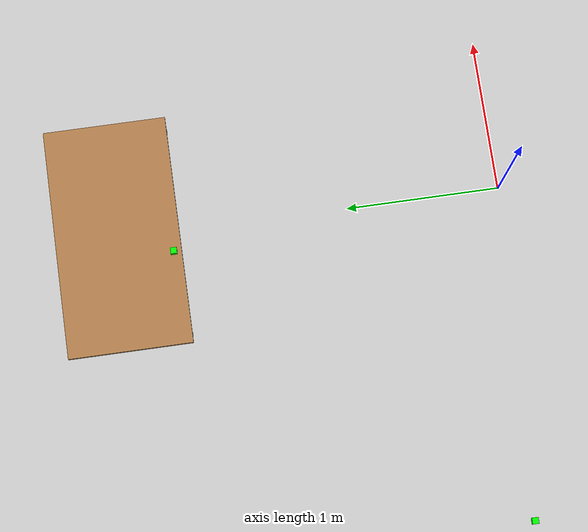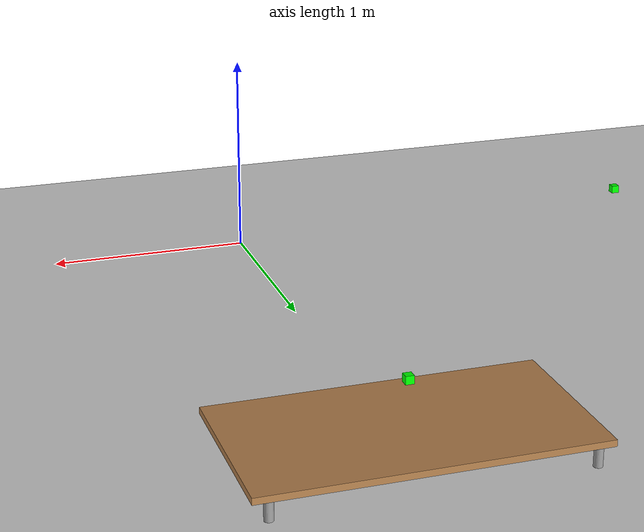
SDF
<sdf version="1.7">
 <world name="my_world">
  <include><uri>model://sun</uri></include>
  <model name="ground_plane">
   <static>1</static>
   <link name="link">
    <collision name="collision">
     <geometry><plane><normal>0 0 1</normal><size>100 100</size></plane></geometry>
     <surface>
      <contact><collide_bitmask>65535</collide_bitmask></contact>
      <friction><ode><mu>1</mu><mu2>50</mu2></ode></friction>
     </surface>
    </collision>
    <visual name="visual">
     <cast_shadows>0</cast_shadows>
     <geometry><plane><normal>0 0 1</normal><size>100 100</size></plane></geometry>
     <material>
      <script><uri>file://media/materials/scripts/gazebo.material</uri><name>Gazebo/Grey</name></script>
     </material>
    </visual>
   </link>
  </model>
  <model name="table_mid">
   <static>1</static>
   <link name="link">
    <collision name="surface">
     <pose>0 0 0.1 0 -0 0</pose>
     <geometry><box><size>1.5 0.8 0.03</size></box></geometry>
     <surface><friction><ode><mu>0.6</mu><mu2>0.6</mu2></ode></friction></surface>
    </collision>
    <visual name="visual1">
     <pose>0 0 0.1 0 -0 0</pose>
     <geometry><box><size>1.5 0.8 0.03</size></box></geometry>
     <material>
      <script><uri>file://media/materials/scripts/gazebo.material</uri><name>Gazebo/Wood</name></script>
     </material>
    </visual>
    <collision name="front_left_leg">
     <pose>0.68 0.38 0.05 0 -0 0</pose>
     <geometry><cylinder><radius>0.02</radius><length>0.1</length></cylinder></geometry>
    </collision>
    <visual name="front_left_leg">
     <pose>0.68 0.38 0.05 0 -0 0</pose>
     <geometry><cylinder><radius>0.02</radius><length>0.1</length></cylinder></geometry>
     <material>
      <script><uri>file://media/materials/scripts/gazebo.material</uri><name>Gazebo/Grey</name></script>
     </material>
    </visual>
    <collision name="front_right_leg">
     <pose>0.68 -0.38 0.05 0 -0 0</pose>
     <geometry><cylinder><radius>0.02</radius><length>0.1</length></cylinder></geometry>
    </collision>
    <visual name="front_right_leg">
     <pose>0.68 -0.38 0.05 0 -0 0</pose>
     <geometry><cylinder><radius>0.02</radius><length>0.1</length></cylinder></geometry>
     <material>
      <script><uri>file://media/materials/scripts/gazebo.material</uri><name>Gazebo/Grey</name></script>
     </material>
    </visual>
    <collision name="back_right_leg">
     <pose>-0.68 -0.38 0.05 0 -0 0</pose>
     <geometry><cylinder><radius>0.02</radius><length>0.1</length></cylinder></geometry>
    </collision>
    <visual name="back_right_leg">
     <pose>-0.68 -0.38 0.05 0 -0 0</pose>
     <geometry><cylinder><radius>0.02</radius><length>0.1</length></cylinder></geometry>
     <material>
      <script><uri>file://media/materials/scripts/gazebo.material</uri><name>Gazebo/Grey</name></script>
     </material>
    </visual>
    <collision name="back_left_leg">
     <pose>-0.68 0.38 0.05 0 -0 0</pose>
     <geometry><cylinder><radius>0.02</radius><length>0.1</length></cylinder></geometry>
    </collision>
    <visual name="back_left_leg">
     <pose>-0.68 0.38 0.05 0 -0 0</pose>
     <geometry><cylinder><radius>0.02</radius><length>0.1</length></cylinder></geometry>
     <material>
      <script><uri>file://media/materials/scripts/gazebo.material</uri><name>Gazebo/Grey</name></script>
     </material>
    </visual>
   </link>
   <pose>0 2.5 0 0 -0 0</pose>
  </model>
  <model name="green_cube_left_new">
   <pose>-2.15 0.15 0.135 -5e-06 -5e-06 1.1e-05</pose>
   <link name="link">
    <self_collide>1</self_collide>
    <inertial>
     <inertia><ixx>0.15</ixx><ixy>0</ixy><ixz>0</ixz><iyy>0.15</iyy><iyz>0</iyz><izz>0.15</izz></inertia>
     <mass>0.2</mass>
    </inertial>
    <visual name="visual">
     <geometry><box><size>0.04 0.04 0.04</size></box></geometry>
     <material>
      <ambient>0 1 0 1</ambient>
      <diffuse>0 1 0 1</diffuse>
      <specular>0.1 0.1 0.1 1</specular>
      <emissive>0 0 0 1</emissive>
      <shader type="pixel"><normal_map>__default__</normal_map></shader>
      <script><name>ModelPreview_1::link::visual_MATERIAL_</name><uri>__default__</uri></script>
     </material>
    </visual>
    <collision name="collision">
     <max_contacts>100</max_contacts>
     <geometry><box><size>0.039 0.039 0.039</size></box></geometry>
     <surface>
      <friction>
       <ode><mu>1</mu><mu2>1</mu2><fdir1>0 0 0</fdir1><slip1>0</slip1><slip2>0</slip2></ode>
       <torsional>
        <coefficient>1</coefficient>
        <patch_radius>0</patch_radius>
        <surface_radius>0</surface_radius>
        <use_patch_radius>1</use_patch_radius>
        <ode><slip>0</slip></ode>
       </torsional>
      </friction>
      <bounce><restitution_coefficient>0</restitution_coefficient><threshold>1e+05</threshold></bounce>
      <contact>
       <collide_without_contact>0</collide_without_contact>
       <collide_without_contact_bitmask>1</collide_without_contact_bitmask>
       <collide_bitmask>1</collide_bitmask>
       <ode>
        <soft_cfm>0</soft_cfm>
        <soft_erp>0.2</soft_erp>
        <kp>1e+13</kp>
        <kd>1</kd>
        <max_vel>0.01</max_vel>
        <min_depth>0</min_depth>
       </ode>
       <bullet>
        <split_impulse>1</split_impulse>
        <split_impulse_penetration_threshold>-0.01</split_impulse_penetration_threshold>
        <soft_cfm>0</soft_cfm>
        <soft_erp>0.2</soft_erp>
        <kp>1e+13</kp>
        <kd>1</kd>
       </bullet>
      </contact>
     </surface>
    </collision>
   </link>
   <static>0</static>
  </model>
  <model name="green_cube_mid">
   <pose>-0.15 2.15 0.135 0 0 0</pose>
   <link name="link">
    <self_collide>1</self_collide>
    <inertial>
     <inertia><ixx>0.15</ixx><ixy>0</ixy><ixz>0</ixz><iyy>0.15</iyy><iyz>0</iyz><izz>0.15</izz></inertia>
     <mass>0.2</mass>
    </inertial>
    <visual name="visual">
     <geometry><box><size>0.04 0.04 0.04</size></box></geometry>
     <material>
      <ambient>0 1 0 1</ambient>
      <diffuse>0 1 0 1</diffuse>
      <specular>0.1 0.1 0.1 1</specular>
      <emissive>0 0 0 1</emissive>
      <shader type="pixel"><normal_map>__default__</normal_map></shader>
      <script><name>ModelPreview_1::link::visual_MATERIAL_</name><uri>__default__</uri></script>
     </material>
    </visual>
    <collision name="collision">
     <max_contacts>100</max_contacts>
     <geometry><box><size>0.039 0.039 0.039</size></box></geometry>
     <surface>
      <friction>
       <ode><mu>1</mu><mu2>1</mu2><fdir1>0 0 0</fdir1><slip1>0</slip1><slip2>0</slip2></ode>
       <torsional>
        <coefficient>1</coefficient>
        <patch_radius>0</patch_radius>
        <surface_radius>0</surface_radius>
        <use_patch_radius>1</use_patch_radius>
        <ode><slip>0</slip></ode>
       </torsional>
      </friction>
      <bounce><restitution_coefficient>0</restitution_coefficient><threshold>1e+05</threshold></bounce>
      <contact>
       <collide_without_contact>0</collide_without_contact>
       <collide_without_contact_bitmask>1</collide_without_contact_bitmask>
       <collide_bitmask>1</collide_bitmask>
       <ode>
        <soft_cfm>0</soft_cfm>
        <soft_erp>0.2</soft_erp>
        <kp>1e+13</kp>
        <kd>1</kd>
        <max_vel>0.01</max_vel>
        <min_depth>0</min_depth>
       </ode>
       <bullet>
        <split_impulse>1</split_impulse>
        <split_impulse_penetration_threshold>-0.01</split_impulse_penetration_threshold>
        <soft_cfm>0</soft_cfm>
        <soft_erp>0.2</soft_erp>
        <kp>1e+13</kp>
        <kd>1</kd>
       </bullet>
      </contact>
     </surface>
    </collision>
   </link>
   <static>0</static>
  </model>
 </world>
</sdf>
